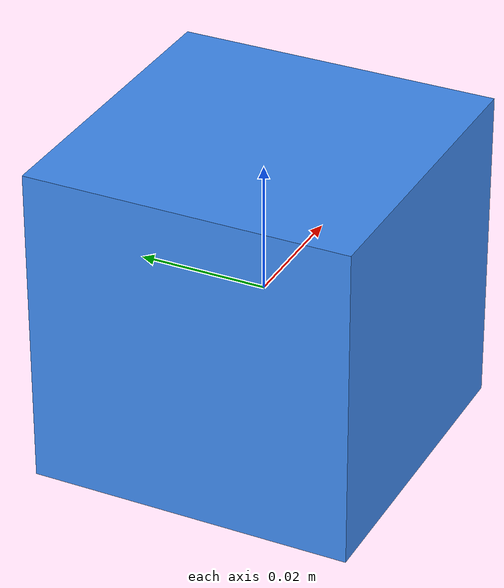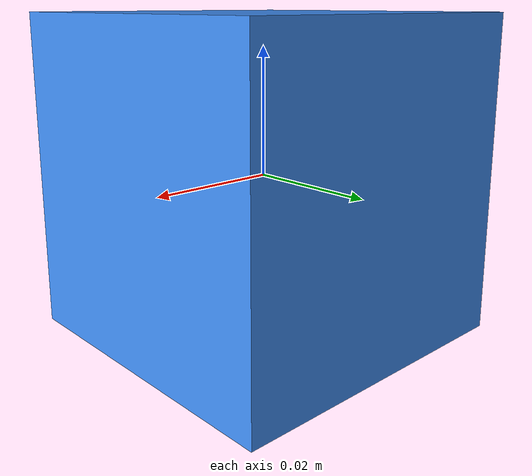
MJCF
<mujoco model="cube">
  <worldbody>
    <body name="grasp_object" pos="0 0 0" quat="1 0 0 0">
      <freejoint name="grasp_object_freejoint"/>
      <geom
        name="grasp_object_geom"
        type="box"
        size="0.025 0.025 0.025"
        density="400"
        friction="0.7 0.02 0.002"
        rgba="0.25 0.55 0.95 1"/>
      <site name="grasp_anchor" pos="0 0 0" size="0.004" rgba="1 0.2 0.2 1"/>
    </body>
  </worldbody>
</mujoco>
